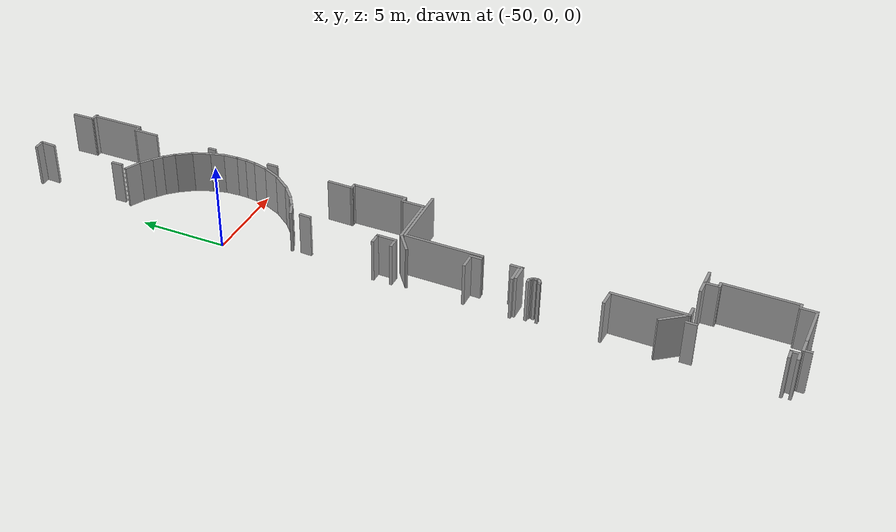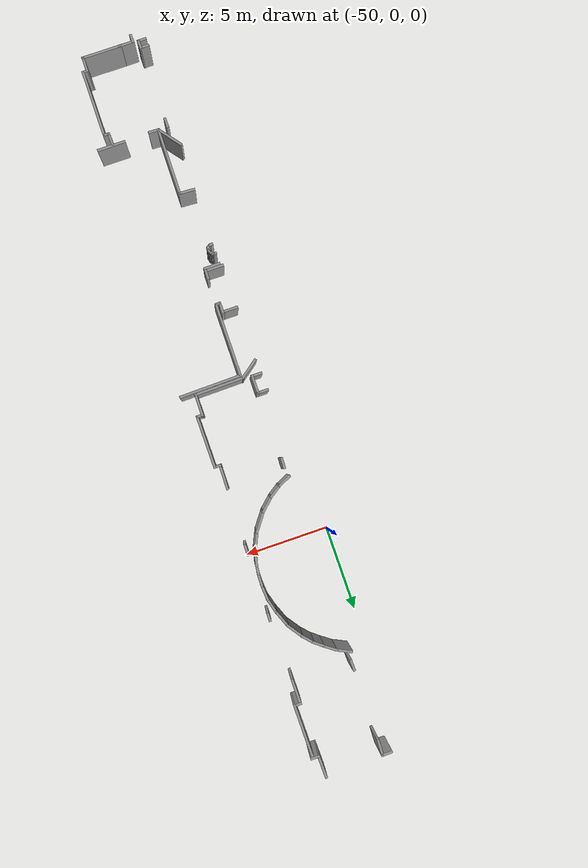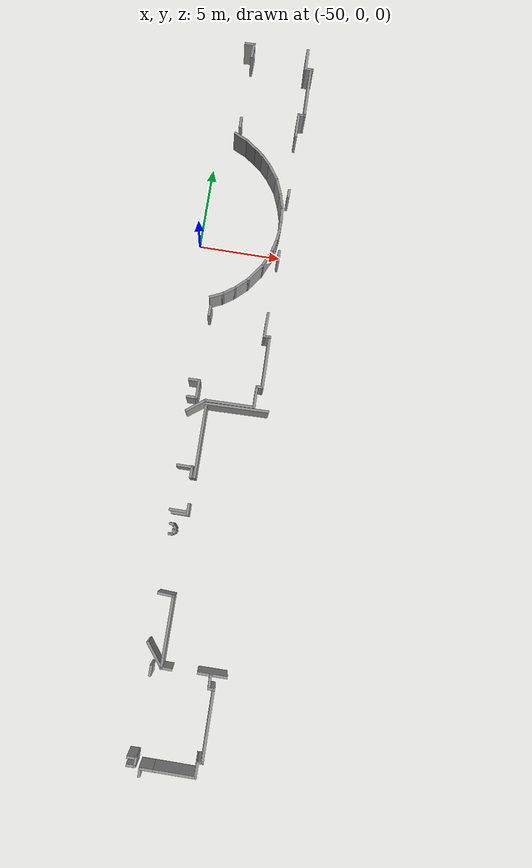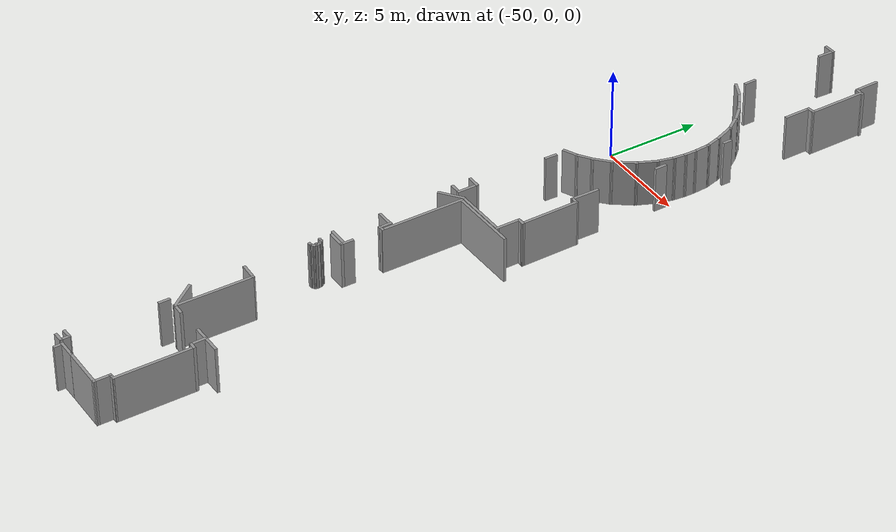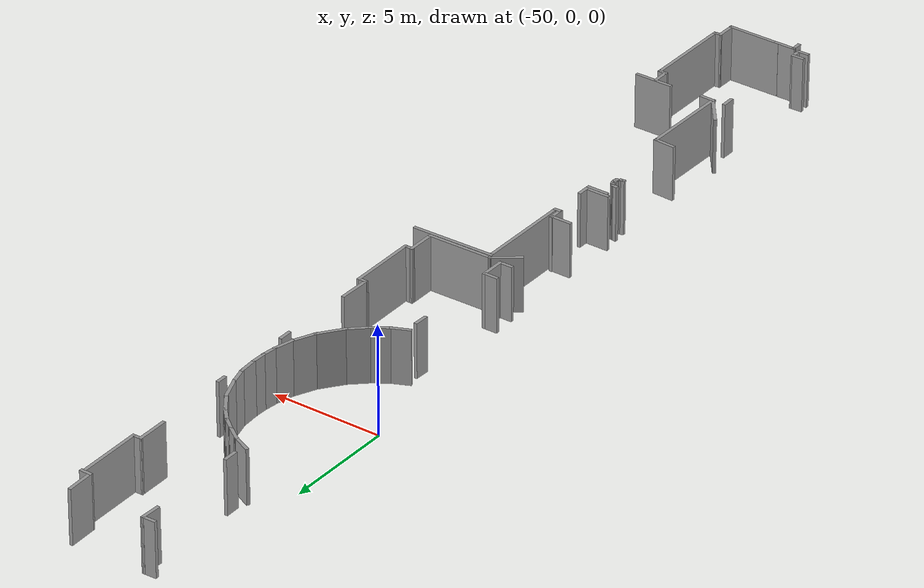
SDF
<sdf version="1.7">
 <model name="TD_n1">
  <pose>-30.6319 -9.22369 0 0 -0 0</pose>
  <link name="Wall_1">
   <collision name="Wall_1_Collision">
    <geometry><box><size>4.5 0.15 2.5</size></box></geometry>
    <pose>0 0 1.25 0 -0 0</pose>
   </collision>
   <visual name="Wall_1_Visual">
    <pose>0 0 1.25 0 -0 0</pose>
    <geometry><box><size>4.5 0.15 2.5</size></box></geometry>
    <material>
     <script><uri>file://media/materials/scripts/gazebo.material</uri><name>Gazebo/Grey</name></script>
     <ambient>1 1 1 1</ambient>
    </material>
    <meta><layer>0</layer></meta>
   </visual>
   <pose>-17.3412 -2.97464 0 0 -0 1.5708</pose>
  </link>
  <link name="Wall_105">
   <collision name="Wall_105_Collision">
    <geometry><box><size>1.02402 0.15 2.5</size></box></geometry>
    <pose>0 0 1.25 0 -0 0</pose>
   </collision>
   <visual name="Wall_105_Visual">
    <pose>0 0 1.25 0 -0 0</pose>
    <geometry><box><size>1.02402 0.15 2.5</size></box></geometry>
    <material>
     <script><uri>file://media/materials/scripts/gazebo.material</uri><name>Gazebo/Grey</name></script>
     <ambient>1 1 1 1</ambient>
    </material>
    <meta><layer>0</layer></meta>
   </visual>
   <pose>-17.9811 -7.20171 0 0 -0 -0.004481</pose>
  </link>
  <link name="Wall_107">
   <collision name="Wall_107_Collision">
    <geometry><box><size>0.226709 0.15 2.5</size></box></geometry>
    <pose>0 0 1.25 0 -0 0</pose>
   </collision>
   <visual name="Wall_107_Visual">
    <pose>0 0 1.25 0 -0 0</pose>
    <geometry><box><size>0.226709 0.15 2.5</size></box></geometry>
    <material>
     <script><uri>file://media/materials/scripts/gazebo.material</uri><name>Gazebo/Grey</name></script>
     <ambient>1 1 1 1</ambient>
    </material>
    <meta><layer>0</layer></meta>
   </visual>
   <pose>-17.9694 -8.43871 0 0 -0 -2.03444</pose>
  </link>
  <link name="Wall_108">
   <collision name="Wall_108_Collision">
    <geometry><box><size>0.314919 0.15 2.5</size></box></geometry>
    <pose>0 0 1.25 0 -0 0</pose>
   </collision>
   <visual name="Wall_108_Visual">
    <pose>0 0 1.25 0 -0 0</pose>
    <geometry><box><size>0.314919 0.15 2.5</size></box></geometry>
    <material>
     <script><uri>file://media/materials/scripts/gazebo.material</uri><name>Gazebo/Grey</name></script>
     <ambient>1 1 1 1</ambient>
    </material>
    <meta><layer>0</layer></meta>
   </visual>
   <pose>-18.0552 -8.51876 0 0 -0 -2.55359</pose>
  </link>
  <link name="Wall_109">
   <collision name="Wall_109_Collision">
    <geometry><box><size>0.259233 0.15 2.5</size></box></geometry>
    <pose>0 0 1.25 0 -0 0</pose>
   </collision>
   <visual name="Wall_109_Visual">
    <pose>0 0 1.25 0 -0 0</pose>
    <geometry><box><size>0.259233 0.15 2.5</size></box></geometry>
    <material>
     <script><uri>file://media/materials/scripts/gazebo.material</uri><name>Gazebo/Grey</name></script>
     <ambient>1 1 1 1</ambient>
    </material>
    <meta><layer>0</layer></meta>
   </visual>
   <pose>-18.1781 -8.57021 0 0 -0 -3.03672</pose>
  </link>
  <link name="Wall_111">
   <collision name="Wall_111_Collision">
    <geometry><box><size>0.301454 0.15 2.5</size></box></geometry>
    <pose>0 0 1.25 0 -0 0</pose>
   </collision>
   <visual name="Wall_111_Visual">
    <pose>0 0 1.25 0 -0 0</pose>
    <geometry><box><size>0.301454 0.15 2.5</size></box></geometry>
    <material>
     <script><uri>file://media/materials/scripts/gazebo.material</uri><name>Gazebo/Grey</name></script>
     <ambient>1 1 1 1</ambient>
    </material>
    <meta><layer>0</layer></meta>
   </visual>
   <pose>-18.1983 -8.01072 0 0 -0 -0.141419</pose>
  </link>
  <link name="Wall_112">
   <collision name="Wall_112_Collision">
    <geometry><box><size>0.263201 0.15 2.5</size></box></geometry>
    <pose>0 0 1.25 0 -0 0</pose>
   </collision>
   <visual name="Wall_112_Visual">
    <pose>0 0 1.25 0 -0 0</pose>
    <geometry><box><size>0.263201 0.15 2.5</size></box></geometry>
    <material>
     <script><uri>file://media/materials/scripts/gazebo.material</uri><name>Gazebo/Grey</name></script>
     <ambient>1 1 1 1</ambient>
    </material>
    <meta><layer>0</layer></meta>
   </visual>
   <pose>-18.0838 -8.06135 0 0 -0 -0.785398</pose>
  </link>
  <link name="Wall_113">
   <collision name="Wall_113_Collision">
    <geometry><box><size>0.256352 0.15 2.5</size></box></geometry>
    <pose>0 0 1.25 0 -0 0</pose>
   </collision>
   <visual name="Wall_113_Visual">
    <pose>0 0 1.25 0 -0 0</pose>
    <geometry><box><size>0.256352 0.15 2.5</size></box></geometry>
    <material>
     <script><uri>file://media/materials/scripts/gazebo.material</uri><name>Gazebo/Grey</name></script>
     <ambient>1 1 1 1</ambient>
    </material>
    <meta><layer>0</layer></meta>
   </visual>
   <pose>-18.0123 -8.14426 0 0 -0 -0.938048</pose>
  </link>
  <link name="Wall_114">
   <collision name="Wall_114_Collision">
    <geometry><box><size>0.237461 0.15 2.5</size></box></geometry>
    <pose>0 0 1.25 0 -0 0</pose>
   </collision>
   <visual name="Wall_114_Visual">
    <pose>0 0 1.25 0 -0 0</pose>
    <geometry><box><size>0.237461 0.15 2.5</size></box></geometry>
    <material>
     <script><uri>file://media/materials/scripts/gazebo.material</uri><name>Gazebo/Grey</name></script>
     <ambient>1 1 1 1</ambient>
    </material>
    <meta><layer>0</layer></meta>
   </visual>
   <pose>-17.9723 -8.23002 0 0 -0 -1.3734</pose>
  </link>
  <link name="Wall_131">
   <collision name="Wall_131_Collision">
    <geometry><box><size>1.388 0.15 2.5</size></box></geometry>
    <pose>0 0 1.25 0 -0 0</pose>
   </collision>
   <visual name="Wall_131_Visual">
    <pose>0 0 1.25 0 -0 0</pose>
    <geometry><box><size>1.388 0.15 2.5</size></box></geometry>
    <material>
     <script><uri>file://media/materials/scripts/gazebo.material</uri><name>Gazebo/Grey</name></script>
     <ambient>1 1 1 1</ambient>
    </material>
    <meta><layer>0</layer></meta>
   </visual>
   <pose>-17.9312 -1.00066 0 0 -0 0.645958</pose>
  </link>
  <link name="Wall_132">
   <collision name="Wall_132_Collision">
    <geometry><box><size>3.04028 0.15 2.5</size></box></geometry>
    <pose>0 0 1.25 0 -0 0</pose>
   </collision>
   <visual name="Wall_132_Visual">
    <pose>0 0 1.25 0 -0 0</pose>
    <geometry><box><size>3.04028 0.15 2.5</size></box></geometry>
    <material>
     <script><uri>file://media/materials/scripts/gazebo.material</uri><name>Gazebo/Grey</name></script>
     <ambient>1 1 1 1</ambient>
    </material>
    <meta><layer>0</layer></meta>
   </visual>
   <pose>-15.992 -0.604314 0 0 -0 0.01642</pose>
  </link>
  <link name="Wall_133">
   <collision name="Wall_133_Collision">
    <geometry><box><size>1.3797 0.15 2.5</size></box></geometry>
    <pose>0 0 1.25 0 -0 0</pose>
   </collision>
   <visual name="Wall_133_Visual">
    <pose>0 0 1.25 0 -0 0</pose>
    <geometry><box><size>1.3797 0.15 2.5</size></box></geometry>
    <material>
     <script><uri>file://media/materials/scripts/gazebo.material</uri><name>Gazebo/Grey</name></script>
     <ambient>1 1 1 1</ambient>
    </material>
    <meta><layer>0</layer></meta>
   </visual>
   <pose>-14.5546 0.034263 0 0 -0 1.5738</pose>
  </link>
  <link name="Wall_136">
   <collision name="Wall_136_Collision">
    <geometry><box><size>0.464516 0.15 2.5</size></box></geometry>
    <pose>0 0 1.25 0 -0 0</pose>
   </collision>
   <visual name="Wall_136_Visual">
    <pose>0 0 1.25 0 -0 0</pose>
    <geometry><box><size>0.464516 0.15 2.5</size></box></geometry>
    <material>
     <script><uri>file://media/materials/scripts/gazebo.material</uri><name>Gazebo/Grey</name></script>
     <ambient>1 1 1 1</ambient>
    </material>
    <meta><layer>0</layer></meta>
   </visual>
   <pose>-14.3992 0.646254 0 0 -0 -0.01818</pose>
  </link>
  <link name="Wall_138">
   <collision name="Wall_138_Collision">
    <geometry><box><size>3.20297 0.15 2.5</size></box></geometry>
    <pose>0 0 1.25 0 -0 0</pose>
   </collision>
   <visual name="Wall_138_Visual">
    <pose>0 0 1.25 0 -0 0</pose>
    <geometry><box><size>3.20297 0.15 2.5</size></box></geometry>
    <material>
     <script><uri>file://media/materials/scripts/gazebo.material</uri><name>Gazebo/Grey</name></script>
     <ambient>1 1 1 1</ambient>
    </material>
    <meta><layer>0</layer></meta>
   </visual>
   <pose>-14.2573 2.1698 0 0 -0 1.5808</pose>
  </link>
  <link name="Wall_139">
   <collision name="Wall_139_Collision">
    <geometry><box><size>0.464821 0.15 2.5</size></box></geometry>
    <pose>0 0 1.25 0 -0 0</pose>
   </collision>
   <visual name="Wall_139_Visual">
    <pose>0 0 1.25 0 -0 0</pose>
    <geometry><box><size>0.464821 0.15 2.5</size></box></geometry>
    <material>
     <script><uri>file://media/materials/scripts/gazebo.material</uri><name>Gazebo/Grey</name></script>
     <ambient>1 1 1 1</ambient>
    </material>
    <meta><layer>0</layer></meta>
   </visual>
   <pose>-14.4299 3.69621 0 0 -0 3.14159</pose>
  </link>
  <link name="Wall_140">
   <collision name="Wall_140_Collision">
    <geometry><box><size>1.53183 0.15 2.5</size></box></geometry>
    <pose>0 0 1.25 0 -0 0</pose>
   </collision>
   <visual name="Wall_140_Visual">
    <pose>0 0 1.25 0 -0 0</pose>
    <geometry><box><size>1.53183 0.15 2.5</size></box></geometry>
    <material>
     <script><uri>file://media/materials/scripts/gazebo.material</uri><name>Gazebo/Grey</name></script>
     <ambient>1 1 1 1</ambient>
    </material>
    <meta><layer>0</layer></meta>
   </visual>
   <pose>-14.5786 4.38707 0 0 -0 1.55814</pose>
  </link>
  <link name="Wall_161">
   <collision name="Wall_161_Collision">
    <geometry><box><size>0.849768 0.15 2.5</size></box></geometry>
    <pose>0 0 1.25 0 -0 0</pose>
   </collision>
   <visual name="Wall_161_Visual">
    <pose>0 0 1.25 0 -0 0</pose>
    <geometry><box><size>0.849768 0.15 2.5</size></box></geometry>
    <material>
     <script><uri>file://media/materials/scripts/gazebo.material</uri><name>Gazebo/Grey</name></script>
     <ambient>1 1 1 1</ambient>
    </material>
    <meta><layer>0</layer></meta>
   </visual>
   <pose>-14.6264 -16.3859 0 0 -0 -1.54906</pose>
  </link>
  <link name="Wall_162">
   <collision name="Wall_162_Collision">
    <geometry><box><size>0.423758 0.15 2.5</size></box></geometry>
    <pose>0 0 1.25 0 -0 0</pose>
   </collision>
   <visual name="Wall_162_Visual">
    <pose>0 0 1.25 0 -0 0</pose>
    <geometry><box><size>0.423758 0.15 2.5</size></box></geometry>
    <material>
     <script><uri>file://media/materials/scripts/gazebo.material</uri><name>Gazebo/Grey</name></script>
     <ambient>1 1 1 1</ambient>
    </material>
    <meta><layer>0</layer></meta>
   </visual>
   <pose>-14.4819 -16.7357 0 0 -0 0</pose>
  </link>
  <link name="Wall_163">
   <collision name="Wall_163_Collision">
    <geometry><box><size>4.1499 0.15 2.5</size></box></geometry>
    <pose>0 0 1.25 0 -0 0</pose>
   </collision>
   <visual name="Wall_163_Visual">
    <pose>0 0 1.25 0 -0 0</pose>
    <geometry><box><size>4.1499 0.15 2.5</size></box></geometry>
    <material>
     <script><uri>file://media/materials/scripts/gazebo.material</uri><name>Gazebo/Grey</name></script>
     <ambient>1 1 1 1</ambient>
    </material>
    <meta><layer>0</layer></meta>
   </visual>
   <pose>-14.3451 -18.7357 0 0 -0 -1.5708</pose>
  </link>
  <link name="Wall_164">
   <collision name="Wall_164_Collision">
    <geometry><box><size>0.408996 0.15 2.5</size></box></geometry>
    <pose>0 0 1.25 0 -0 0</pose>
   </collision>
   <visual name="Wall_164_Visual">
    <pose>0 0 1.25 0 -0 0</pose>
    <geometry><box><size>0.408996 0.15 2.5</size></box></geometry>
    <material>
     <script><uri>file://media/materials/scripts/gazebo.material</uri><name>Gazebo/Grey</name></script>
     <ambient>1 1 1 1</ambient>
    </material>
    <meta><layer>0</layer></meta>
   </visual>
   <pose>-14.4743 -20.7432 0 0 -0 -3.08284</pose>
  </link>
  <link name="Wall_165">
   <collision name="Wall_165_Collision">
    <geometry><box><size>0.970503 0.15 2.5</size></box></geometry>
    <pose>0 0 1.25 0 -0 0</pose>
   </collision>
   <visual name="Wall_165_Visual">
    <pose>0 0 1.25 0 -0 0</pose>
    <geometry><box><size>0.970503 0.15 2.5</size></box></geometry>
    <material>
     <script><uri>file://media/materials/scripts/gazebo.material</uri><name>Gazebo/Grey</name></script>
     <ambient>1 1 1 1</ambient>
    </material>
    <meta><layer>0</layer></meta>
   </visual>
   <pose>-14.6036 -21.1609 0 0 -0 -1.57076</pose>
  </link>
  <link name="Wall_166">
   <collision name="Wall_166_Collision">
    <geometry><box><size>2.45989 0.15 2.5</size></box></geometry>
    <pose>0 0 1.25 0 -0 0</pose>
   </collision>
   <visual name="Wall_166_Visual">
    <pose>0 0 1.25 0 -0 0</pose>
    <geometry><box><size>2.45989 0.15 2.5</size></box></geometry>
    <material>
     <script><uri>file://media/materials/scripts/gazebo.material</uri><name>Gazebo/Grey</name></script>
     <ambient>1 1 1 1</ambient>
    </material>
    <meta><layer>0</layer></meta>
   </visual>
   <pose>-15.7585 -21.5681 0 0 -0 3.13912</pose>
  </link>
  <link name="Wall_168">
   <collision name="Wall_168_Collision">
    <geometry><box><size>1.00169 0.15 2.5</size></box></geometry>
    <pose>0 0 1.25 0 -0 0</pose>
   </collision>
   <visual name="Wall_168_Visual">
    <pose>0 0 1.25 0 -0 0</pose>
    <geometry><box><size>1.00169 0.15 2.5</size></box></geometry>
    <material>
     <script><uri>file://media/materials/scripts/gazebo.material</uri><name>Gazebo/Grey</name></script>
     <ambient>1 1 1 1</ambient>
    </material>
    <meta><layer>0</layer></meta>
   </visual>
   <pose>-17.2861 -21.5683 0 0 -0 3.14159</pose>
  </link>
  <link name="Wall_169">
   <collision name="Wall_169_Collision">
    <geometry><box><size>0.528448 0.15 2.5</size></box></geometry>
    <pose>0 0 1.25 0 -0 0</pose>
   </collision>
   <visual name="Wall_169_Visual">
    <pose>0 0 1.25 0 -0 0</pose>
    <geometry><box><size>0.528448 0.15 2.5</size></box></geometry>
    <material>
     <script><uri>file://media/materials/scripts/gazebo.material</uri><name>Gazebo/Grey</name></script>
     <ambient>1 1 1 1</ambient>
    </material>
    <meta><layer>0</layer></meta>
   </visual>
   <pose>-17.7091 -21.7632 0 0 -0 -1.55568</pose>
  </link>
  <link name="Wall_190">
   <collision name="Wall_190_Collision">
    <geometry><box><size>0.593564 0.15 2.5</size></box></geometry>
    <pose>0 0 1.25 0 -0 0</pose>
   </collision>
   <visual name="Wall_190_Visual">
    <pose>0 0 1.25 0 -0 0</pose>
    <geometry><box><size>0.593564 0.15 2.5</size></box></geometry>
    <material>
     <script><uri>file://media/materials/scripts/gazebo.material</uri><name>Gazebo/Grey</name></script>
     <ambient>1 1 1 1</ambient>
    </material>
    <meta><layer>0</layer></meta>
   </visual>
   <pose>-18.2588 -21.0755 0 0 -0 0.019605</pose>
  </link>
  <link name="Wall_191">
   <collision name="Wall_191_Collision">
    <geometry><box><size>0.576176 0.15 2.5</size></box></geometry>
    <pose>0 0 1.25 0 -0 0</pose>
   </collision>
   <visual name="Wall_191_Visual">
    <pose>0 0 1.25 0 -0 0</pose>
    <geometry><box><size>0.576176 0.15 2.5</size></box></geometry>
    <material>
     <script><uri>file://media/materials/scripts/gazebo.material</uri><name>Gazebo/Grey</name></script>
     <ambient>1 1 1 1</ambient>
    </material>
    <meta><layer>0</layer></meta>
   </visual>
   <pose>-18.0327 -21.2842 0 0 -0 -1.55039</pose>
  </link>
  <link name="Wall_192">
   <collision name="Wall_192_Collision">
    <geometry><box><size>0.567753 0.15 2.5</size></box></geometry>
    <pose>0 0 1.25 0 -0 0</pose>
   </collision>
   <visual name="Wall_192_Visual">
    <pose>0 0 1.25 0 -0 0</pose>
    <geometry><box><size>0.567753 0.15 2.5</size></box></geometry>
    <material>
     <script><uri>file://media/materials/scripts/gazebo.material</uri><name>Gazebo/Grey</name></script>
     <ambient>1 1 1 1</ambient>
    </material>
    <meta><layer>0</layer></meta>
   </visual>
   <pose>-18.237 -21.5016 0 0 -0 -3.12076</pose>
  </link>
  <link name="Wall_201">
   <collision name="Wall_201_Collision">
    <geometry><box><size>0.616199 0.15 2.5</size></box></geometry>
    <pose>0 0 1.25 0 -0 0</pose>
   </collision>
   <visual name="Wall_201_Visual">
    <pose>0 0 1.25 0 -0 0</pose>
    <geometry><box><size>0.616199 0.15 2.5</size></box></geometry>
    <material>
     <script><uri>file://media/materials/scripts/gazebo.material</uri><name>Gazebo/Grey</name></script>
     <ambient>1 1 1 1</ambient>
    </material>
    <meta><layer>0</layer></meta>
   </visual>
   <pose>-18.0274 -16.2825 0 0 -0 -1.5647</pose>
  </link>
  <link name="Wall_251">
   <collision name="Wall_251_Collision">
    <geometry><box><size>0.713539 0.15 2.5</size></box></geometry>
    <pose>0 0 1.25 0 -0 0</pose>
   </collision>
   <visual name="Wall_251_Visual">
    <pose>0 0 1.25 0 -0 0</pose>
    <geometry><box><size>0.713539 0.15 2.5</size></box></geometry>
    <material>
     <script><uri>file://media/materials/scripts/gazebo.material</uri><name>Gazebo/Grey</name></script>
     <ambient>1 1 1 1</ambient>
    </material>
    <meta><layer>0</layer></meta>
   </visual>
   <pose>-18.2584 0.471231 0 0 -0 0</pose>
  </link>
  <link name="Wall_252">
   <collision name="Wall_252_Collision">
    <geometry><box><size>1.17599 0.15 2.5</size></box></geometry>
    <pose>0 0 1.25 0 -0 0</pose>
   </collision>
   <visual name="Wall_252_Visual">
    <pose>0 0 1.25 0 -0 0</pose>
    <geometry><box><size>1.17599 0.15 2.5</size></box></geometry>
    <material>
     <script><uri>file://media/materials/scripts/gazebo.material</uri><name>Gazebo/Grey</name></script>
     <ambient>1 1 1 1</ambient>
    </material>
    <meta><layer>0</layer></meta>
   </visual>
   <pose>-17.9768 -0.041666 0 0 -0 -1.5708</pose>
  </link>
  <link name="Wall_253">
   <collision name="Wall_253_Collision">
    <geometry><box><size>0.672953 0.15 2.5</size></box></geometry>
    <pose>0 0 1.25 0 -0 0</pose>
   </collision>
   <visual name="Wall_253_Visual">
    <pose>0 0 1.25 0 -0 0</pose>
    <geometry><box><size>0.672953 0.15 2.5</size></box></geometry>
    <material>
     <script><uri>file://media/materials/scripts/gazebo.material</uri><name>Gazebo/Grey</name></script>
     <ambient>1 1 1 1</ambient>
    </material>
    <meta><layer>0</layer></meta>
   </visual>
   <pose>-18.2383 -0.554561 0 0 -0 3.14159</pose>
  </link>
  <link name="Wall_262">
   <collision name="Wall_262_Collision">
    <geometry><box><size>0.67334 0.15 2.5</size></box></geometry>
    <pose>0 0 1.25 0 -0 0</pose>
   </collision>
   <visual name="Wall_262_Visual">
    <pose>0 0 1.25 0 -0 0</pose>
    <geometry><box><size>0.67334 0.15 2.5</size></box></geometry>
    <material>
     <script><uri>file://media/materials/scripts/gazebo.material</uri><name>Gazebo/Grey</name></script>
     <ambient>1 1 1 1</ambient>
    </material>
    <meta><layer>0</layer></meta>
   </visual>
   <pose>-18.0288 4.72382 0 0 -0 -1.60924</pose>
  </link>
  <link name="Wall_266">
   <collision name="Wall_266_Collision">
    <geometry><box><size>0.648588 0.15 2.5</size></box></geometry>
    <pose>0 0 1.25 0 -0 0</pose>
   </collision>
   <visual name="Wall_266_Visual">
    <pose>0 0 1.25 0 -0 0</pose>
    <geometry><box><size>0.648588 0.15 2.5</size></box></geometry>
    <material>
     <script><uri>file://media/materials/scripts/gazebo.material</uri><name>Gazebo/Grey</name></script>
     <ambient>1 1 1 1</ambient>
    </material>
    <meta><layer>0</layer></meta>
   </visual>
   <pose>-14.4827 8.70527 0 0 -0 -1.56114</pose>
  </link>
  <link name="Wall_272">
   <collision name="Wall_272_Collision">
    <geometry><box><size>0.343469 0.15 2.5</size></box></geometry>
    <pose>0 0 1.25 0 -0 0</pose>
   </collision>
   <visual name="Wall_272_Visual">
    <pose>0 0 1.25 0 -0 0</pose>
    <geometry><box><size>0.343469 0.15 2.5</size></box></geometry>
    <material>
     <script><uri>file://media/materials/scripts/gazebo.material</uri><name>Gazebo/Grey</name></script>
     <ambient>1 1 1 1</ambient>
    </material>
    <meta><layer>0</layer></meta>
   </visual>
   <pose>-17.438 -5.14965 0 0 -0 -3.14147</pose>
  </link>
  <link name="Wall_277">
   <collision name="Wall_277_Collision">
    <geometry><box><size>0.896172 0.15 2.5</size></box></geometry>
    <pose>0 0 1.25 0 -0 0</pose>
   </collision>
   <visual name="Wall_277_Visual">
    <pose>0 0 1.25 0 -0 0</pose>
    <geometry><box><size>0.896172 0.15 2.5</size></box></geometry>
    <material>
     <script><uri>file://media/materials/scripts/gazebo.material</uri><name>Gazebo/Grey</name></script>
     <ambient>1 1 1 1</ambient>
    </material>
    <meta><layer>0</layer></meta>
   </visual>
   <pose>-17.7827 5.70923 0 0 -0 0.429178</pose>
  </link>
  <link name="Wall_278">
   <collision name="Wall_278_Collision">
    <geometry><box><size>0.94425 0.15 2.5</size></box></geometry>
    <pose>0 0 1.25 0 -0 0</pose>
   </collision>
   <visual name="Wall_278_Visual">
    <pose>0 0 1.25 0 -0 0</pose>
    <geometry><box><size>0.94425 0.15 2.5</size></box></geometry>
    <material>
     <script><uri>file://media/materials/scripts/gazebo.material</uri><name>Gazebo/Grey</name></script>
     <ambient>1 1 1 1</ambient>
    </material>
    <meta><layer>0</layer></meta>
   </visual>
   <pose>-17.1157 6.08873 0 0 -0 0.60005</pose>
  </link>
  <link name="Wall_279">
   <collision name="Wall_279_Collision">
    <geometry><box><size>1.10228 0.15 2.5</size></box></geometry>
    <pose>0 0 1.25 0 -0 0</pose>
   </collision>
   <visual name="Wall_279_Visual">
    <pose>0 0 1.25 0 -0 0</pose>
    <geometry><box><size>1.10228 0.15 2.5</size></box></geometry>
    <material>
     <script><uri>file://media/materials/scripts/gazebo.material</uri><name>Gazebo/Grey</name></script>
     <ambient>1 1 1 1</ambient>
    </material>
    <meta><layer>0</layer></meta>
   </visual>
   <pose>-16.4372 6.63498 0 0 -0 0.742689</pose>
  </link>
  <link name="Wall_280">
   <collision name="Wall_280_Collision">
    <geometry><box><size>1.35064 0.15 2.5</size></box></geometry>
    <pose>0 0 1.25 0 -0 0</pose>
   </collision>
   <visual name="Wall_280_Visual">
    <pose>0 0 1.25 0 -0 0</pose>
    <geometry><box><size>1.35064 0.15 2.5</size></box></geometry>
    <material>
     <script><uri>file://media/materials/scripts/gazebo.material</uri><name>Gazebo/Grey</name></script>
     <ambient>1 1 1 1</ambient>
    </material>
    <meta><layer>0</layer></meta>
   </visual>
   <pose>-15.73 7.43998 0 0 -0 0.934958</pose>
  </link>
  <link name="Wall_281">
   <collision name="Wall_281_Collision">
    <geometry><box><size>1.17408 0.15 2.5</size></box></geometry>
    <pose>0 0 1.25 0 -0 0</pose>
   </collision>
   <visual name="Wall_281_Visual">
    <pose>0 0 1.25 0 -0 0</pose>
    <geometry><box><size>1.17408 0.15 2.5</size></box></geometry>
    <material>
     <script><uri>file://media/materials/scripts/gazebo.material</uri><name>Gazebo/Grey</name></script>
     <ambient>1 1 1 1</ambient>
    </material>
    <meta><layer>0</layer></meta>
   </visual>
   <pose>-15.1607 8.38873 0 0 -0 1.14231</pose>
  </link>
  <link name="Wall_283">
   <collision name="Wall_283_Collision">
    <geometry><box><size>1.00348 0.15 2.5</size></box></geometry>
    <pose>0 0 1.25 0 -0 0</pose>
   </collision>
   <visual name="Wall_283_Visual">
    <pose>0 0 1.25 0 -0 0</pose>
    <geometry><box><size>1.00348 0.15 2.5</size></box></geometry>
    <material>
     <script><uri>file://media/materials/scripts/gazebo.material</uri><name>Gazebo/Grey</name></script>
     <ambient>1 1 1 1</ambient>
    </material>
    <meta><layer>0</layer></meta>
   </visual>
   <pose>-14.8445 9.26848 0 0 -0 1.32582</pose>
  </link>
  <link name="Wall_284">
   <collision name="Wall_284_Collision">
    <geometry><box><size>0.763393 0.15 2.5</size></box></geometry>
    <pose>0 0 1.25 0 -0 0</pose>
   </collision>
   <visual name="Wall_284_Visual">
    <pose>0 0 1.25 0 -0 0</pose>
    <geometry><box><size>0.763393 0.15 2.5</size></box></geometry>
    <material>
     <script><uri>file://media/materials/scripts/gazebo.material</uri><name>Gazebo/Grey</name></script>
     <ambient>1 1 1 1</ambient>
    </material>
    <meta><layer>0</layer></meta>
   </visual>
   <pose>-14.7065 9.98723 0 0 -0 1.45807</pose>
  </link>
  <link name="Wall_285">
   <collision name="Wall_285_Collision">
    <geometry><box><size>0.713617 0.15 2.5</size></box></geometry>
    <pose>0 0 1.25 0 -0 0</pose>
   </collision>
   <visual name="Wall_285_Visual">
    <pose>0 0 1.25 0 -0 0</pose>
    <geometry><box><size>0.713617 0.15 2.5</size></box></geometry>
    <material>
     <script><uri>file://media/materials/scripts/gazebo.material</uri><name>Gazebo/Grey</name></script>
     <ambient>1 1 1 1</ambient>
    </material>
    <meta><layer>0</layer></meta>
   </visual>
   <pose>-14.6662 10.5737 0 0 -0 1.55039</pose>
  </link>
  <link name="Wall_286">
   <collision name="Wall_286_Collision">
    <geometry><box><size>0.979277 0.15 2.5</size></box></geometry>
    <pose>0 0 1.25 0 -0 0</pose>
   </collision>
   <visual name="Wall_286_Visual">
    <pose>0 0 1.25 0 -0 0</pose>
    <geometry><box><size>0.979277 0.15 2.5</size></box></geometry>
    <material>
     <script><uri>file://media/materials/scripts/gazebo.material</uri><name>Gazebo/Grey</name></script>
     <ambient>1 1 1 1</ambient>
    </material>
    <meta><layer>0</layer></meta>
   </visual>
   <pose>-14.6892 11.2695 0 0 -0 1.64013</pose>
  </link>
  <link name="Wall_287">
   <collision name="Wall_287_Collision">
    <geometry><box><size>0.950882 0.15 2.5</size></box></geometry>
    <pose>0 0 1.25 0 -0 0</pose>
   </collision>
   <visual name="Wall_287_Visual">
    <pose>0 0 1.25 0 -0 0</pose>
    <geometry><box><size>0.950882 0.15 2.5</size></box></geometry>
    <material>
     <script><uri>file://media/materials/scripts/gazebo.material</uri><name>Gazebo/Grey</name></script>
     <ambient>1 1 1 1</ambient>
    </material>
    <meta><layer>0</layer></meta>
   </visual>
   <pose>-14.8272 12.0687 0 0 -0 1.84712</pose>
  </link>
  <link name="Wall_289">
   <collision name="Wall_289_Collision">
    <geometry><box><size>1.17718 0.15 2.5</size></box></geometry>
    <pose>0 0 1.25 0 -0 0</pose>
   </collision>
   <visual name="Wall_289_Visual">
    <pose>0 0 1.25 0 -0 0</pose>
    <geometry><box><size>1.17718 0.15 2.5</size></box></geometry>
    <material>
     <script><uri>file://media/materials/scripts/gazebo.material</uri><name>Gazebo/Grey</name></script>
     <ambient>1 1 1 1</ambient>
    </material>
    <meta><layer>0</layer></meta>
   </visual>
   <pose>-15.1262 12.9312 0 0 -0 1.94922</pose>
  </link>
  <link name="Wall_290">
   <collision name="Wall_290_Collision">
    <geometry><box><size>1.13927 0.15 2.5</size></box></geometry>
    <pose>0 0 1.25 0 -0 0</pose>
   </collision>
   <visual name="Wall_290_Visual">
    <pose>0 0 1.25 0 -0 0</pose>
    <geometry><box><size>1.13927 0.15 2.5</size></box></geometry>
    <material>
     <script><uri>file://media/materials/scripts/gazebo.material</uri><name>Gazebo/Grey</name></script>
     <ambient>1 1 1 1</ambient>
    </material>
    <meta><layer>0</layer></meta>
   </visual>
   <pose>-15.6035 13.811 0 0 -0 2.19105</pose>
  </link>
  <link name="Wall_291">
   <collision name="Wall_291_Collision">
    <geometry><box><size>0.874135 0.15 2.5</size></box></geometry>
    <pose>0 0 1.25 0 -0 0</pose>
   </collision>
   <visual name="Wall_291_Visual">
    <pose>0 0 1.25 0 -0 0</pose>
    <geometry><box><size>0.874135 0.15 2.5</size></box></geometry>
    <material>
     <script><uri>file://media/materials/scripts/gazebo.material</uri><name>Gazebo/Grey</name></script>
     <ambient>1 1 1 1</ambient>
    </material>
    <meta><layer>0</layer></meta>
   </visual>
   <pose>-16.1382 14.478 0 0 -0 2.3225</pose>
  </link>
  <link name="Wall_292">
   <collision name="Wall_292_Collision">
    <geometry><box><size>0.731973 0.15 2.5</size></box></geometry>
    <pose>0 0 1.25 0 -0 0</pose>
   </collision>
   <visual name="Wall_292_Visual">
    <pose>0 0 1.25 0 -0 0</pose>
    <geometry><box><size>0.731973 0.15 2.5</size></box></geometry>
    <material>
     <script><uri>file://media/materials/scripts/gazebo.material</uri><name>Gazebo/Grey</name></script>
     <ambient>1 1 1 1</ambient>
    </material>
    <meta><layer>0</layer></meta>
   </visual>
   <pose>-16.6155 14.9207 0 0 -0 2.48228</pose>
  </link>
  <link name="Wall_293">
   <collision name="Wall_293_Collision">
    <geometry><box><size>0.916024 0.15 2.5</size></box></geometry>
    <pose>0 0 1.25 0 -0 0</pose>
   </collision>
   <visual name="Wall_293_Visual">
    <pose>0 0 1.25 0 -0 0</pose>
    <geometry><box><size>0.916024 0.15 2.5</size></box></geometry>
    <material>
     <script><uri>file://media/materials/scripts/gazebo.material</uri><name>Gazebo/Grey</name></script>
     <ambient>1 1 1 1</ambient>
    </material>
    <meta><layer>0</layer></meta>
   </visual>
   <pose>-17.156 15.3232 0 0 -0 2.51611</pose>
  </link>
  <link name="Wall_294">
   <collision name="Wall_294_Collision">
    <geometry><box><size>0.988554 0.15 2.5</size></box></geometry>
    <pose>0 0 1.25 0 -0 0</pose>
   </collision>
   <visual name="Wall_294_Visual">
    <pose>0 0 1.25 0 -0 0</pose>
    <geometry><box><size>0.988554 0.15 2.5</size></box></geometry>
    <material>
     <script><uri>file://media/materials/scripts/gazebo.material</uri><name>Gazebo/Grey</name></script>
     <ambient>1 1 1 1</ambient>
    </material>
    <meta><layer>0</layer></meta>
   </visual>
   <pose>-17.846 15.7257 0 0 -0 2.70248</pose>
  </link>
  <link name="Wall_351">
   <collision name="Wall_351_Collision">
    <geometry><box><size>0.956313 0.15 2.5</size></box></geometry>
    <pose>0 0 1.25 0 -0 0</pose>
   </collision>
   <visual name="Wall_351_Visual">
    <pose>0 0 1.25 0 -0 0</pose>
    <geometry><box><size>0.956313 0.15 2.5</size></box></geometry>
    <material>
     <script><uri>file://media/materials/scripts/gazebo.material</uri><name>Gazebo/Grey</name></script>
     <ambient>1 1 1 1</ambient>
    </material>
    <meta><layer>0</layer></meta>
   </visual>
   <pose>-18.0162 21.3873 0 0 -0 1.54223</pose>
  </link>
  <link name="Wall_352">
   <collision name="Wall_352_Collision">
    <geometry><box><size>0.656131 0.15 2.5</size></box></geometry>
    <pose>0 0 1.25 0 -0 0</pose>
   </collision>
   <visual name="Wall_352_Visual">
    <pose>0 0 1.25 0 -0 0</pose>
    <geometry><box><size>0.656131 0.15 2.5</size></box></geometry>
    <material>
     <script><uri>file://media/materials/scripts/gazebo.material</uri><name>Gazebo/Grey</name></script>
     <ambient>1 1 1 1</ambient>
    </material>
    <meta><layer>0</layer></meta>
   </visual>
   <pose>-18.2577 21.784 0 0 -0 -3.11887</pose>
  </link>
  <link name="Wall_354">
   <collision name="Wall_354_Collision">
    <geometry><box><size>1.3465 0.15 2.5</size></box></geometry>
    <pose>0 0 1.25 0 -0 0</pose>
   </collision>
   <visual name="Wall_354_Visual">
    <pose>0 0 1.25 0 -0 0</pose>
    <geometry><box><size>1.3465 0.15 2.5</size></box></geometry>
    <material>
     <script><uri>file://media/materials/scripts/gazebo.material</uri><name>Gazebo/Grey</name></script>
     <ambient>1 1 1 1</ambient>
    </material>
    <meta><layer>0</layer></meta>
   </visual>
   <pose>-14.6294 21.3068 0 0 -0 -1.54196</pose>
  </link>
  <link name="Wall_355">
   <collision name="Wall_355_Collision">
    <geometry><box><size>0.552664 0.15 2.5</size></box></geometry>
    <pose>0 0 1.25 0 -0 0</pose>
   </collision>
   <visual name="Wall_355_Visual">
    <pose>0 0 1.25 0 -0 0</pose>
    <geometry><box><size>0.552664 0.15 2.5</size></box></geometry>
    <material>
     <script><uri>file://media/materials/scripts/gazebo.material</uri><name>Gazebo/Grey</name></script>
     <ambient>1 1 1 1</ambient>
    </material>
    <meta><layer>0</layer></meta>
   </visual>
   <pose>-14.4109 20.703 0 0 -0 -0.028564</pose>
  </link>
  <link name="Wall_357">
   <collision name="Wall_357_Collision">
    <geometry><box><size>3.11346 0.15 2.5</size></box></geometry>
    <pose>0 0 1.25 0 -0 0</pose>
   </collision>
   <visual name="Wall_357_Visual">
    <pose>0 0 1.25 0 -0 0</pose>
    <geometry><box><size>3.11346 0.15 2.5</size></box></geometry>
    <material>
     <script><uri>file://media/materials/scripts/gazebo.material</uri><name>Gazebo/Grey</name></script>
     <ambient>1 1 1 1</ambient>
    </material>
    <meta><layer>0</layer></meta>
   </visual>
   <pose>-14.2692 19.1757 0 0 -0 -1.5574</pose>
  </link>
  <link name="Wall_358">
   <collision name="Wall_358_Collision">
    <geometry><box><size>0.494866 0.15 2.5</size></box></geometry>
    <pose>0 0 1.25 0 -0 0</pose>
   </collision>
   <visual name="Wall_358_Visual">
    <pose>0 0 1.25 0 -0 0</pose>
    <geometry><box><size>0.494866 0.15 2.5</size></box></geometry>
    <material>
     <script><uri>file://media/materials/scripts/gazebo.material</uri><name>Gazebo/Grey</name></script>
     <ambient>1 1 1 1</ambient>
    </material>
    <meta><layer>0</layer></meta>
   </visual>
   <pose>-14.4213 17.6879 0 0 -0 -3.10315</pose>
  </link>
  <link name="Wall_359">
   <collision name="Wall_359_Collision">
    <geometry><box><size>1.49901 0.15 2.5</size></box></geometry>
    <pose>0 0 1.25 0 -0 0</pose>
   </collision>
   <visual name="Wall_359_Visual">
    <pose>0 0 1.25 0 -0 0</pose>
    <geometry><box><size>1.49901 0.15 2.5</size></box></geometry>
    <material>
     <script><uri>file://media/materials/scripts/gazebo.material</uri><name>Gazebo/Grey</name></script>
     <ambient>1 1 1 1</ambient>
    </material>
    <meta><layer>0</layer></meta>
   </visual>
   <pose>-14.5866 17.0068 0 0 -0 -1.56099</pose>
  </link>
  <link name="Wall_372">
   <collision name="Wall_372_Collision">
    <geometry><box><size>0.5 0.15 2.5</size></box></geometry>
    <pose>0 0 1.25 0 -0 0</pose>
   </collision>
   <visual name="Wall_372_Visual">
    <pose>0 0 1.25 0 -0 0</pose>
    <geometry><box><size>0.5 0.15 2.5</size></box></geometry>
    <material>
     <script><uri>file://media/materials/scripts/gazebo.material</uri><name>Gazebo/Grey</name></script>
     <ambient>1 1 1 1</ambient>
    </material>
    <meta><layer>0</layer></meta>
   </visual>
   <pose>-14.466 12.6359 0 0 -0 1.5708</pose>
  </link>
  <link name="Wall_385">
   <collision name="Wall_385_Collision">
    <geometry><box><size>0.679125 0.15 2.5</size></box></geometry>
    <pose>0 0 1.25 0 -0 0</pose>
   </collision>
   <visual name="Wall_385_Visual">
    <pose>0 0 1.25 0 -0 0</pose>
    <geometry><box><size>0.679125 0.15 2.5</size></box></geometry>
    <material>
     <script><uri>file://media/materials/scripts/gazebo.material</uri><name>Gazebo/Grey</name></script>
     <ambient>1 1 1 1</ambient>
    </material>
    <meta><layer>0</layer></meta>
   </visual>
   <pose>-18.0406 16.6461 0 0 -0 -1.54906</pose>
  </link>
  <link name="Wall_4">
   <collision name="Wall_4_Collision">
    <geometry><box><size>3.77935 0.15 2.5</size></box></geometry>
    <pose>0 0 1.25 0 -0 0</pose>
   </collision>
   <visual name="Wall_4_Visual">
    <pose>0 0 1.25 0 -0 0</pose>
    <geometry><box><size>3.77935 0.15 2.5</size></box></geometry>
    <material>
     <script><uri>file://media/materials/scripts/gazebo.material</uri><name>Gazebo/Grey</name></script>
     <ambient>1 1 1 1</ambient>
    </material>
    <meta><layer>0</layer></meta>
   </visual>
   <pose>-15.5269 -0.762474 0 0 -0 0.020481</pose>
  </link>
  <link name="Wall_44">
   <collision name="Wall_44_Collision">
    <geometry><box><size>1.73012 0.15 2.5</size></box></geometry>
    <pose>0 0 1.25 0 -0 0</pose>
   </collision>
   <visual name="Wall_44_Visual">
    <pose>0 0 1.25 0 -0 0</pose>
    <geometry><box><size>1.73012 0.15 2.5</size></box></geometry>
    <material>
     <script><uri>file://media/materials/scripts/gazebo.material</uri><name>Gazebo/Grey</name></script>
     <ambient>1 1 1 1</ambient>
    </material>
    <meta><layer>0</layer></meta>
   </visual>
   <pose>-14.5436 -15.9846 0 0 -0 -3.13845</pose>
  </link>
  <link name="Wall_46">
   <collision name="Wall_46_Collision">
    <geometry><box><size>0.710154 0.15 2.5</size></box></geometry>
    <pose>0 0 1.25 0 -0 0</pose>
   </collision>
   <visual name="Wall_46_Visual">
    <pose>0 0 1.25 0 -0 0</pose>
    <geometry><box><size>0.710154 0.15 2.5</size></box></geometry>
    <material>
     <script><uri>file://media/materials/scripts/gazebo.material</uri><name>Gazebo/Grey</name></script>
     <ambient>1 1 1 1</ambient>
    </material>
    <meta><layer>0</layer></meta>
   </visual>
   <pose>-17.1922 -16.0369 0 0 -0 3.11036</pose>
  </link>
  <link name="Wall_47">
   <collision name="Wall_47_Collision">
    <geometry><box><size>4.14429 0.15 2.5</size></box></geometry>
    <pose>0 0 1.25 0 -0 0</pose>
   </collision>
   <visual name="Wall_47_Visual">
    <pose>0 0 1.25 0 -0 0</pose>
    <geometry><box><size>4.14429 0.15 2.5</size></box></geometry>
    <material>
     <script><uri>file://media/materials/scripts/gazebo.material</uri><name>Gazebo/Grey</name></script>
     <ambient>1 1 1 1</ambient>
    </material>
    <meta><layer>0</layer></meta>
   </visual>
   <pose>-17.4415 -14.0311 0 0 -0 1.56417</pose>
  </link>
  <link name="Wall_49">
   <collision name="Wall_49_Collision">
    <geometry><box><size>1.00319 0.15 2.5</size></box></geometry>
    <pose>0 0 1.25 0 -0 0</pose>
   </collision>
   <visual name="Wall_49_Visual">
    <pose>0 0 1.25 0 -0 0</pose>
    <geometry><box><size>1.00319 0.15 2.5</size></box></geometry>
    <material>
     <script><uri>file://media/materials/scripts/gazebo.material</uri><name>Gazebo/Grey</name></script>
     <ambient>1 1 1 1</ambient>
    </material>
    <meta><layer>0</layer></meta>
   </visual>
   <pose>-17.8542 -11.9983 0 0 -0 3.08882</pose>
  </link>
  <link name="Wall_53">
   <collision name="Wall_53_Collision">
    <geometry><box><size>1.01144 0.15 2.5</size></box></geometry>
    <pose>0 0 1.25 0 -0 0</pose>
   </collision>
   <visual name="Wall_53_Visual">
    <pose>0 0 1.25 0 -0 0</pose>
    <geometry><box><size>1.01144 0.15 2.5</size></box></geometry>
    <material>
     <script><uri>file://media/materials/scripts/gazebo.material</uri><name>Gazebo/Grey</name></script>
     <ambient>1 1 1 1</ambient>
    </material>
    <meta><layer>0</layer></meta>
   </visual>
   <pose>-17.8307 -7.35431 0 0 -0 0</pose>
  </link>
  <link name="Wall_54">
   <collision name="Wall_54_Collision">
    <geometry><box><size>0.727 0.15 2.5</size></box></geometry>
    <pose>0 0 1.25 0 -0 0</pose>
   </collision>
   <visual name="Wall_54_Visual">
    <pose>0 0 1.25 0 -0 0</pose>
    <geometry><box><size>0.727 0.15 2.5</size></box></geometry>
    <material>
     <script><uri>file://media/materials/scripts/gazebo.material</uri><name>Gazebo/Grey</name></script>
     <ambient>1 1 1 1</ambient>
    </material>
    <meta><layer>0</layer></meta>
   </visual>
   <pose>-17.4 -7.05431 0 0 -0 1.5708</pose>
  </link>
  <link name="Wall_61">
   <collision name="Wall_61_Collision">
    <geometry><box><size>0.15 0.15 2.5</size></box></geometry>
    <pose>0 0 1.25 0 -0 0</pose>
   </collision>
   <visual name="Wall_61_Visual">
    <pose>0 0 1.25 0 -0 0</pose>
    <geometry><box><size>0.15 0.15 2.5</size></box></geometry>
    <material>
     <script><uri>file://media/materials/scripts/gazebo.material</uri><name>Gazebo/Grey</name></script>
     <ambient>1 1 1 1</ambient>
    </material>
    <meta><layer>0</layer></meta>
   </visual>
   <pose>-18.0372 -8.31071 0 0 -0 0</pose>
  </link>
  <link name="Wall_65">
   <collision name="Wall_65_Collision">
    <geometry><box><size>0.15 0.15 2.5</size></box></geometry>
    <pose>0 0 1.25 0 -0 0</pose>
   </collision>
   <visual name="Wall_65_Visual">
    <pose>0 0 1.25 0 -0 0</pose>
    <geometry><box><size>0.15 0.15 2.5</size></box></geometry>
    <material>
     <script><uri>file://media/materials/scripts/gazebo.material</uri><name>Gazebo/Grey</name></script>
     <ambient>1 1 1 1</ambient>
    </material>
    <meta><layer>0</layer></meta>
   </visual>
   <pose>-18.0017 -8.31119 0 0 -0 0</pose>
  </link>
  <link name="Wall_90">
   <collision name="Wall_90_Collision">
    <geometry><box><size>1.72022 0.15 2.5</size></box></geometry>
    <pose>0 0 1.25 0 -0 0</pose>
   </collision>
   <visual name="Wall_90_Visual">
    <pose>0 0 1.25 0 -0 0</pose>
    <geometry><box><size>1.72022 0.15 2.5</size></box></geometry>
    <material>
     <script><uri>file://media/materials/scripts/gazebo.material</uri><name>Gazebo/Grey</name></script>
     <ambient>1 1 1 1</ambient>
    </material>
    <meta><layer>0</layer></meta>
   </visual>
   <pose>-17.9364 -15.4082 0 0 -0 2.23134</pose>
  </link>
  <link name="Wall_94">
   <collision name="Wall_94_Collision">
    <geometry><box><size>0.7185 0.15 2.5</size></box></geometry>
    <pose>0 0 1.25 0 -0 0</pose>
   </collision>
   <visual name="Wall_94_Visual">
    <pose>0 0 1.25 0 -0 0</pose>
    <geometry><box><size>0.7185 0.15 2.5</size></box></geometry>
    <material>
     <script><uri>file://media/materials/scripts/gazebo.material</uri><name>Gazebo/Grey</name></script>
     <ambient>1 1 1 1</ambient>
    </material>
    <meta><layer>0</layer></meta>
   </visual>
   <pose>-17.5648 -4.87556 0 0 -0 1.5708</pose>
  </link>
  <link name="Wall_95">
   <collision name="Wall_95_Collision">
    <geometry><box><size>1 0.15 2.5</size></box></geometry>
    <pose>0 0 1.25 0 -0 0</pose>
   </collision>
   <visual name="Wall_95_Visual">
    <pose>0 0 1.25 0 -0 0</pose>
    <geometry><box><size>1 0.15 2.5</size></box></geometry>
    <material>
     <script><uri>file://media/materials/scripts/gazebo.material</uri><name>Gazebo/Grey</name></script>
     <ambient>1 1 1 1</ambient>
    </material>
    <meta><layer>0</layer></meta>
   </visual>
   <pose>-17.9898 -4.61431 0 0 -0 3.14159</pose>
  </link>
  <static>1</static>
 </model>
</sdf>
